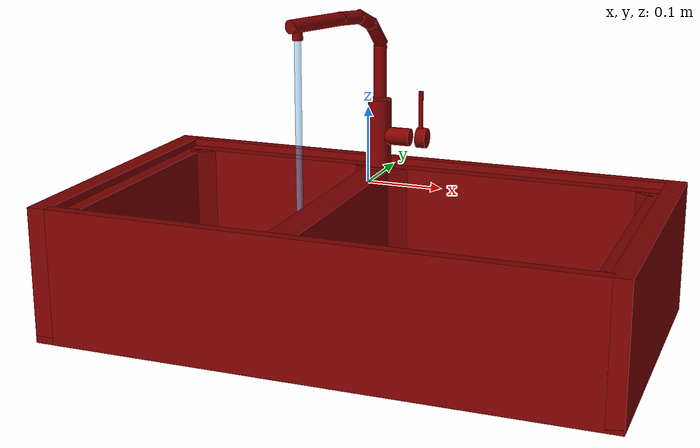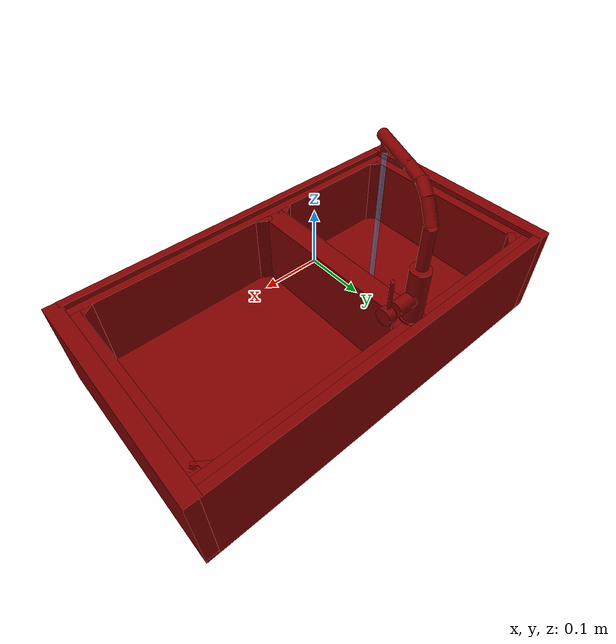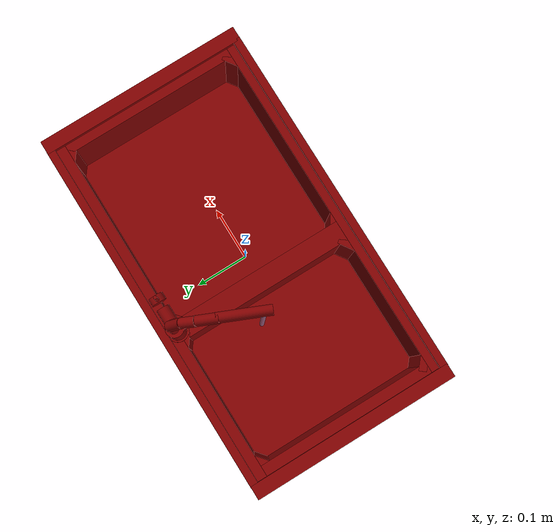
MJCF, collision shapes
<?xml version='1.0' encoding='UTF-8'?>
<mujoco model="model">
  <option timestep="0.002" gravity="0.0 0.0 -9.81"/>
  <compiler angle="radian"/>
  <asset>
    <mesh file="visuals/handle.obj" name="handle_vis"/>
    <mesh file="visuals/Body001.obj" name="Body001_vis"/>
    <mesh file="visuals/spout.obj" name="spout_vis"/>
    <texture file="visuals/T_BC001.png" name="Body001_material" type="2d"/>
    <material name="Body001_material" rgba="1 1 1 1.0" texture="Body001_material" shininess="0.4472135901451111" specular="1"/>
    <texture file="visuals/T_BC001.png" name="handle_material" type="2d"/>
    <material name="handle_material" rgba="1 1 1 1.0" texture="handle_material" shininess="0.4472135901451111" specular="1"/>
    <texture file="visuals/T_BC001.png" name="spout_material" type="2d"/>
    <material name="spout_material" rgba="1 1 1 1.0" texture="spout_material" shininess="0.4472135901451111" specular="1"/>
  </asset>
  <default>
    <default class="visual">
      <geom conaffinity="0" contype="0" group="1" type="mesh"/>
    </default>
    <default class="collision">
      <geom group="0" rgba="0.5 0 0 0.5" solimp="0.998 0.998 0.001" solref="0.001 2"/>
    </default>
    <default class="spawn">
      <geom group="0" rgba="1 1 1 0.5" contype="0" conaffinity="0"/>
      <site group="0" rgba="1 1 1 0.5"/>
    </default>
    <default class="region">
      <geom group="1" conaffinity="0" contype="0" rgba="0 1 0 0"/>
    </default>
  </default>
  <worldbody>
    <body>
      <body name="object">
        <geom mesh="Body001_vis" type="mesh" solimp="0.998 0.998 0.001" solref="0.001 1" friction="0.95 0.3 0.1" class="visual" material="Body001_material"/>
        <geom class="collision" type="box" pos="0.0 0.0 -0.19905619323253632" size="0.38632914423942566 0.2115684300661087 0.0051182471215724945" quat="1.0 0.0 0.0 0.0"/>
        <geom class="collision" type="box" pos="0.3736465573310852 0.0 -0.11111032962799072" size="0.0138369370251894 0.2115684300661087 0.09306410700082779" quat="1.0 0.0 0.0 0.0"/>
        <geom class="collision" type="box" pos="-0.3736245930194855 0.0 -0.11111032217741013" size="0.013858901336789131 0.2115684300661087 0.09306411445140839" quat="1.0 0.0 0.0 0.0"/>
        <geom class="collision" type="box" pos="0.0012131482362747192 0.2041551023721695 -0.11088104546070099" size="0.3632982075214386 0.007806297857314348 0.0927361249923706" quat="1.0 0.0 0.0 0.0"/>
        <geom class="collision" type="box" pos="0.0012131482362747192 -0.20428858697414398 -0.11083169281482697" size="0.3632982075214386 0.007672680541872978 0.09278547763824463" quat="1.0 0.0 0.0 0.0"/>
        <geom class="collision" type="box" pos="0.0012131482362747192 0.18715034425258636 -0.11627642065286636" size="0.3632982075214386 0.01073927991092205 0.08789749443531036" quat="1.0 0.0 0.0 0.0"/>
        <geom class="collision" type="box" pos="0.0012131482362747192 -0.19109629094600677 -0.11627642065286636" size="0.3632982075214386 0.010324908420443535 0.08789755403995514" quat="1.0 0.0 0.0 0.0"/>
        <geom class="collision" type="box" pos="0.35152482986450195 0.0 -0.11638457328081131" size="0.010122864507138729 0.2115696668624878 0.0877898633480072" quat="1.0 0.0 0.0 0.0"/>
        <geom class="collision" type="box" pos="-0.34962978959083557 0.0 -0.11642096936702728" size="0.011104637756943703 0.21156948804855347 0.08782625943422318" quat="1.0 0.0 0.0 0.0"/>
        <geom class="collision" type="box" pos="-0.049932487308979034 0.0 -0.11642096936702728" size="0.020335232838988304 0.2115684300661087 0.08782625943422318" quat="1.0 0.0 0.0 0.0"/>
        <geom class="collision" type="box" pos="-0.00222933292388916 0.0 -0.1887398660182953" size="0.34686532616615295 0.18343639373779297 0.015434572473168373" quat="1.0 0.0 0.0 0.0"/>
        <geom class="collision" type="box" pos="-0.33367568254470825 0.17161761224269867 -0.11642096936702728" size="0.019925637170672417 0.007462342269718647 0.08782625943422318" quat="0.940239667892456 0.0 0.0 0.3405134379863739"/>
        <geom class="collision" type="box" pos="-0.02384537272155285 0.17186811566352844 -0.11642096936702728" size="0.019925637170672417 0.007462342269718647 0.08782625943422318" quat="0.940239667892456 0.0 0.0 0.3405134379863739"/>
        <geom class="collision" type="box" pos="0.33523038029670715 -0.17924779653549194 -0.11638457328081131" size="0.019925637170672417 0.007462342269718647 0.0877898633480072" quat="0.9531394243240356 0.0 0.0 0.302531361579895"/>
        <geom class="collision" type="box" pos="-0.07779514789581299 -0.1783633679151535 -0.11638457328081131" size="0.019925637170672417 0.007462342735379934 0.0877898633480072" quat="0.9558876156806946 0.0 0.0 0.29373273253440857"/>
        <geom class="collision" type="box" pos="-0.3338356018066406 -0.1801322102546692 -0.11642096936702728" size="0.019925637170672417 0.007462342269718647 0.08782625943422318" quat="0.9399371147155762 0.0 -0.0 -0.34134769439697266"/>
        <geom class="collision" type="box" pos="-0.07469967007637024 0.1771746724843979 -0.11642096936702728" size="0.019925637170672417 0.007462342269718647 0.08782625943422318" quat="0.9495238065719604 0.0 -0.0 -0.3136950433254242"/>
        <geom class="collision" type="box" pos="-0.023403137922286987 -0.180574432015419 -0.1163845807313919" size="0.019925637170672417 0.007462342735379934 0.0877898707985878" quat="0.9591093063354492 0.0 -0.0 -0.28303593397140503"/>
        <geom class="collision" type="box" pos="0.3356725871562958 0.17629022896289825 -0.11638457328081131" size="0.019925637170672417 0.007462342735379934 0.0877898633480072" quat="0.9488807916641235 0.0 -0.0 -0.3156346082687378"/>
        <geom class="collision" type="cylinder" pos="-0.049444589763879776 0.17700879275798798 -0.02717815339565277" size="0.020696282386779785 0.0019337263656780124" quat="1.0 0.0 0.0 0.0"/>
        <geom class="collision" type="cylinder" pos="-0.049444589763879776 0.17726176977157593 0.022596560418605804" size="0.01705211028456688 0.04953644052147865" quat="1.0 0.0 0.0 0.0"/>
        <geom class="collision" type="cylinder" pos="-0.02029481530189514 0.17738276720046997 0.018992409110069275" size="0.012767321430146694 0.017574816942214966" quat="0.7071068286895752 -0.0 0.7071067690849304 0.0"/>
        <body name="handle">
          <joint axis="1.0 0.0 0.0" pos="0.01257920078933239 0.17753572762012482 0.01950230821967125" limited="true" name="handle_temp_joint" type="hinge" range="-0.7853981633974483 0.7853981633974483" damping="0.5" frictionloss="1" armature="2"/>
          <joint axis="0.0 1.0 0.0" pos="0.01257920078933239 0.17753572762012482 0.01950230821967125" limited="true" name="handle_joint" type="hinge" range="0 0.5" damping="0.5" frictionloss="1" armature="2"/>
          <geom mesh="handle_vis" type="mesh" solimp="0.998 0.998 0.001" solref="0.001 1" friction="0.95 0.3 0.1" class="visual" material="handle_material"/>
          <geom class="collision" type="cylinder" pos="0.015489368699491024 0.17738178372383118 0.020002074539661407" size="0.01446201466023922 0.007181084714829922" quat="0.7071068286895752 -0.0 0.7071067690849304 0.0"/>
          <geom name="handle_main" class="collision" type="cylinder" pos="0.013081747107207775 0.17752034962177277 0.05927969515323639" size="0.003281090874224901 0.028297901153564453" quat="1.0 0.0 0.0 0.0"/>
        </body>
        <body name="spout">
          <joint axis="0.0 0.0 1.0" pos="-0.04904136061668396 0.17851115763187408 0.13632214069366455" limited="true" name="spout_joint" range="-0.7853981633974483 1.5707963267948966" type="hinge" damping="10"/>
          <site type="cylinder" rgba="0.5 0.75 1 0.5" size="0.004692251328378916 0.18583299219608307" pos="-0.11325418204069138 0.03193925321102142 -0.0023765861988067627" name="water"/>
          <geom mesh="spout_vis" type="mesh" solimp="0.998 0.998 0.001" solref="0.001 1" friction="0.95 0.3 0.1" class="visual" material="spout_material"/>
          <geom class="collision" type="cylinder" pos="-0.049444589763879776 0.17850525677204132 0.11271379888057709" size="0.009567921981215477 0.0370426299571991" quat="1.0 0.0 0.0 0.0"/>
          <geom class="collision" type="cylinder" pos="-0.052810266613960266 0.1702764630317688 0.16827000677585602" size="0.009567921981215477 0.020221775397658348" quat="0.9513658285140991 0.2607976198196411 -0.1363416612148285 0.09109681844711304"/>
          <geom class="collision" type="cylinder" pos="-0.062100600451231 0.1497892439365387 0.18924789130687714" size="0.009567921049892902 0.015004752203822136" quat="0.8503028154373169 0.4190908372402191 -0.2927687466144562 0.12503796815872192"/>
          <geom class="collision" type="cylinder" pos="-0.07453925162553787 0.12178981304168701 0.19504337012767792" size="0.009567921981215477 0.020221775397658348" quat="0.7059001326560974 0.5602014064788818 -0.4060839116573334 0.15157592296600342"/>
          <geom class="collision" type="cylinder" pos="-0.09944776445627213 0.06365624070167542 0.19526846706867218" size="0.009567921981215477 0.04792982339859009" quat="0.6845719814300537 0.5685099959373474 -0.42573148012161255 0.16404356062412262" name="spout_main"/>
          <geom class="collision" type="cylinder" pos="-0.11299525946378708 0.031744394451379776 0.1826270967721939" size="0.007299602031707764 0.0068480451591312885" quat="1.0 0.0 0.0 0.0"/>
        </body>
        <geom class="region" name="reg_basin_left" type="box" pos="-0.20393932983279228 -0.0032850801944732666 -0.10087276250123978" size="0.13050705364346504 0.1610150167942047 0.07211082226037979"/>
        <geom class="region" name="reg_basin_right" type="box" pos="0.15580741688609123 -0.002155974507331848 -0.10032614320516586" size="0.17410215905308724 0.16834713315963745 0.07156420296430588"/>
        <geom class="region" name="reg_main" type="box" pos="-7.450580596923828e-09 5.960464477539063e-08 -0.1111467182636261" size="0.38848350739479065 0.2129612693786621 0.09410051798820496"/>
      </body>
    </body>
  </worldbody>
  <actuator>
    <motor name="handle_joint_actuator" joint="handle_joint" gear="10"/>
    <motor name="handle_temp_joint_actuator" joint="handle_temp_joint" gear="10"/>
    <motor name="spout_joint_actuator" joint="spout_joint" gear="10"/>
  </actuator>
</mujoco>
